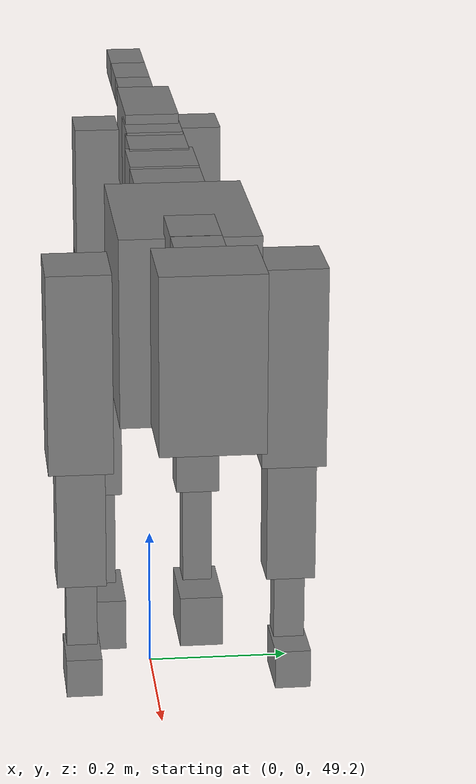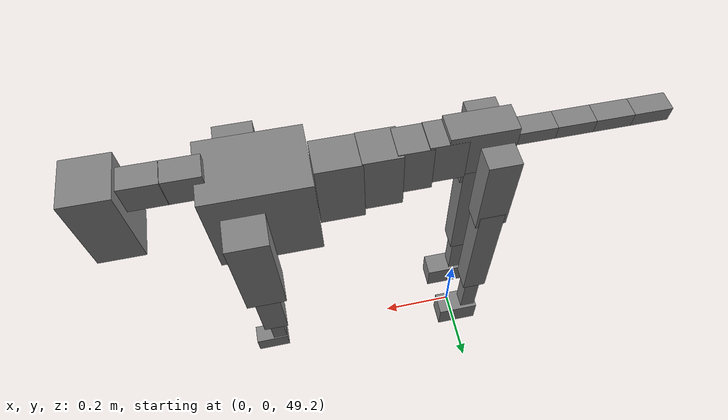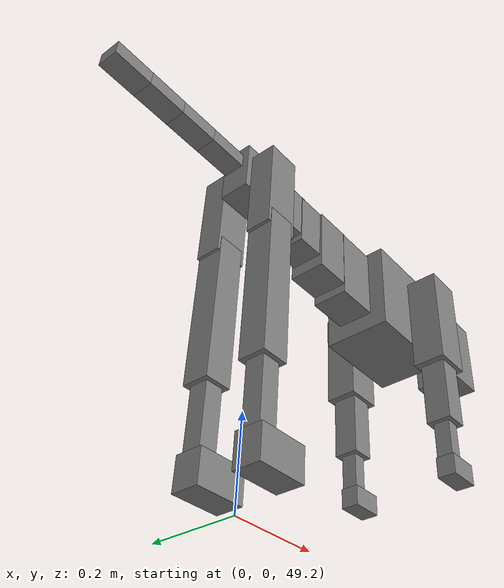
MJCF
<mujoco model="dog">

    <default>
        <joint armature="0.02" stiffness="1" damping="0.2" limited="true"/>
        <geom condim="3" friction="1 0.05 0.05" margin="0.01"/>
        <motor ctrllimited="true" ctrlrange="-1.0 1.0" forcelimited="true" gear="50"/>
    </default>

    <compiler inertiafromgeom="true" angle="radian"/>

    <option timestep="0.016" iterations="50" tolerance="1e-10" solver="Newton" jacobian="dense" cone="pyramidal"/>

    <size nconmax="20000" njmax="60000" nstack="5000000"/>
    <visual>
        <map force="0.1" zfar="30"/>
        <rgba haze="0.15 0.25 0.35 1"/>
        <quality shadowsize="2048"/>
        <global offwidth="800" offheight="800"/>
    </visual>

    <asset>
        <texture type="skybox" builtin="gradient" rgb1="0.3 0.5 0.7" rgb2="0 0 0" width="512" height="512"/>
        <texture name="texplane" type="2d" builtin="checker" rgb1=".2 .3 .4" rgb2=".1 0.15 0.2" width="512" height="512"
                 mark="cross" markrgb=".8 .8 .8"/>
        <texture name="texgeom" type="cube" builtin="flat" mark="cross" width="127" height="1278" rgb1="0.8 0.6 0.4"
                 rgb2="0.8 0.6 0.4" markrgb="1 1 1" random="0.01"/>

        <material name="matplane" reflectance="0.3" texture="texplane" texrepeat="1 1" texuniform="true"/>
        <material name="matgeom" texture="texgeom" texuniform="true" rgba="0.8 0.6 .4 1"/>
    </asset>

    <worldbody>
        <geom name="floor" pos="0 0 0" size="0 0 .25" type="plane" material="matplane" condim="3"/>

        <light directional="false" diffuse=".2 .2 .2" specular="0 0 0" pos="0 0 5" dir="0 0 -1" castshadow="false"/>
        <light mode="targetbodycom" target="torso" directional="false" diffuse=".8 .8 .8" specular="0.3 0.3 0.3"
               pos="0 0 4.0" dir="0 0 -1"/>

        <body name="root" pos="0 0 50">
            <freejoint name="root_1"/>
            <geom type="box" pos="0 0 -0.02" size="0.0774  0.0358  0.063" density="2030"/>

            <body name="spine1" pos="0.054 0 0">
                <joint name="spine1_y" axis="0 1 0" range="0 0.7" limited="true"/>
                <geom type="box" pos="0.02375 0 -0.03" size="0.04375  0.0375  0.05985" density="2030"/>

                <body name="spine2" pos="0.0612 0 0">
                    <joint name="spine2_y" axis="0 1 0" range="-0.15 0.15" limited="true"/>
                    <geom type="box" pos="0.03555  0  -0.04" size="0.04055  0.039  0.06615" density="2030"/>

                    <body name="spine3" pos="0.0730 0 0">
                        <joint name="spine3_y" axis="0 1 0" range="-0.15 0.15" limited="true"/>
                        <geom type="box" pos="0.03555  0  -0.057" size="0.04555  0.0445  0.081" density="2030"/>

                        <body name="spine4" pos="0.0780 0 0">
                            <joint name="spine4_y" axis="0 1 0" range="-0.15 0.15" limited="true"/>
                            <geom type="box" pos="0.05265  0  -0.07" size="0.05265  0.045  0.09135" density="2030"/>

                            <body name="torso" pos="0.1082 0 0">
                                <joint name="torso_y" axis="0 1 0" range="-0.15 0.15" limited="true"/>
                                <geom type="box" pos="0.11925  0  -0.085" size="0.11925  0.085  0.11745"
                                      density="2030"/>

                                <body name="neck1" pos="0.2160  0   0.0180">
                                    <joint name="neck1_y" axis="0 1 0" range="-1.2  -1" limited="true"/>
                                    <geom type="box" pos="0.0423  0  0" size="0.0423  0.03  0.036" density="2325"/>

                                    <body name="neck2" pos="0.0853  0  0">
                                        <joint name="neck2_y" axis="0 1 0" range="0.1  0" limited="true"/>
                                        <geom type="box" pos="0.0423  0  0" size="0.0423  0.03  0.036" density="2325"/>

                                        <body name="head" pos="0.0853  0  0">
                                            <joint name="head_y" axis="0 1 0" range="-0.3  -0.2" limited="true"/>
                                            <geom type="box" pos="0.0531  0  -0.055" size="0.0531  0.06  0.1044"
                                                  density="4030"/>

                                        </body>
                                    </body>
                                </body>

                                <body name="front_shoulder" pos="0.156  0   -0.0480">
                                    <joint name="front_shoulder_y" axis="0 1 0" range="-1 1.5" limited="true"/>
                                    <geom type="box" pos="0 0.13 -0.1001" size="0.0464  0.0397  0.1267" density="1158"/>
                                    <geom type="box" pos="0 -0.13 -0.1001" size="0.0464  0.0397  0.1267"
                                          density="1158"/>

                                    <body name="front_elbow" pos="0  0  -0.2001">
                                        <joint name="front_elbow_y" axis="0 1 0" range="-2 0" limited="true"/>
                                        <geom type="box" pos="0 0.13 -0.0909" size="0.0297  0.0303  0.0909"
                                              density="1081"/>
                                        <geom type="box" pos="0 -0.13 -0.0909" size="0.0297  0.0303  0.0909"
                                              density="1081"/>

                                        <body name="front_wrist" pos="0  0  -0.1817">
                                            <joint name="front_wrist_y" axis="0 1 0" range="-0.2 0" limited="true"/>
                                            <geom type="box" pos="0 0.13 -0.0497" size="0.0172  0.0191  0.0628"
                                                  density="1664"/>
                                            <geom type="box" pos="0 -0.13 -0.0497" size="0.0172  0.0191  0.0628"
                                                  density="1664"/>

                                            <body name="front_finger_end" pos="0  0  -0.0993">
                                                <joint name="front_finger_y" axis="0 1 0" range="-0.4 1"
                                                       limited="true"/>
                                                <geom type="box" pos="0.0221  0.13  -0.0096"
                                                      size="0.0405  0.0221  0.0246" density="1515"/>
                                                <geom type="box" pos="0.0221  -0.13  -0.0096"
                                                      size="0.0405  0.0221  0.0246" density="1515"/>

                                            </body>

                                        </body>
                                    </body>
                                </body>

                            </body>
                        </body>
                    </body>
                </body>
            </body>

            <body name="back_hip" pos="-0.03 0 -0.018">
                <joint name="back_hip_y" axis="0 1 0" range="-1.5 0.3" limited="true"/>
                <geom type="box" pos="0 0.07 -0.0902" size="0.0381  0.0299  0.1130" density="1154"/>
                <geom type="box" pos="0 -0.07 -0.0902" size="0.0381  0.0299  0.1130" density="1154"/>

                <body name="back_knee" pos="0  0  -0.1804">
                    <joint name="back_knee_y" axis="0 1 0" range="0 2.8" limited="true"/>
                    <geom type="box" pos="0 0.07 -0.1616" size="0.0312  0.0307  0.1772" density="1227"/>
                    <geom type="box" pos="0 -0.07 -0.1616" size="0.0312  0.0307  0.1772" density="1227"/>

                    <body name="back_ankle" pos="0  0  -0.3233">
                        <joint name="back_ankle_y" axis="0 1 0" range="-2.2 0" limited="true"/>
                        <geom type="box" pos="0 0.07 -0.0861" size="0.0209  0.0209  0.0974" density="1284"/>
                        <geom type="box" pos="0 -0.07 -0.0861" size="0.0209  0.0209  0.0974" density="1284"/>

                        <body name="back_toe_end" pos="0  0  -0.1723">
                            <joint name="back_toe_y" axis="0 1 0" range="-0.4 1" limited="true"/>
                            <geom type="box" pos="0.0308  0.07  -0.0223" size="0.0565  0.0308  0.0373" density="1515"/>
                            <geom type="box" pos="0.0308  -0.07  -0.0223" size="0.0565  0.0308  0.0373" density="1515"/>

                        </body>
                    </body>
                </body>
            </body>

            <body name="tail1" pos="-0.074 0 -0.006">
                <joint name="tail1_y" axis="0 1 0" range="-0.2 0.2" limited="true"/>
                <geom type="box" pos="-0.0536  0  0" size="0.045  0.025  0.0175" density="1587"/>

                <body name="tail2" pos="-0.09 0 0">
                    <joint name="tail2_y" axis="0 1 0" range="-0.2 0.2" limited="true"/>
                    <geom type="box" pos="-0.0536  0  0" size="0.045  0.025  0.0175" density="1587"/>

                    <body name="tail3" pos="-0.09 0 0">
                        <joint name="tail3_y" axis="0 1 0" range="-0.2 0.2" limited="true"/>
                        <geom type="box" pos="-0.0536  0  0" size="0.045  0.025  0.0175" density="1587"/>

                        <body name="tail4" pos="-0.09 0 0">
                            <joint name="tail4_y" axis="0 1 0" range="-0.2 0.2" limited="true"/>
                            <geom type="box" pos="-0.0536  0  0" size="0.045  0.025  0.0175" density="1587"/>

                        </body>
                    </body>
                </body>
            </body>
        </body>
    </worldbody>

    <actuator>
        <motor joint="spine1_y" forcerange="-150 150     "/>
        <motor joint="spine2_y" forcerange="-150 150     "/>
        <motor joint="spine3_y" forcerange="-150 150     "/>
        <motor joint="spine4_y" forcerange="-150 150     "/>
        <motor joint="torso_y" forcerange="-150 150     "/>
        <motor joint="neck1_y" forcerange="-100 100       "/>
        <motor joint="neck2_y" forcerange="-100 100       "/>
        <motor joint="head_y" forcerange="-150 150       "/>
        <motor joint="front_shoulder_y" forcerange="-197.22 167.37"/>
        <motor joint="front_elbow_y" forcerange="-190.05 130.58"/>
        <motor joint="front_wrist_y" forcerange="-76.34 76.12"/>
        <motor joint="front_finger_y" forcerange="-24.28 53.57"/>
        <motor joint="back_hip_y" forcerange="-207.06 391.07"/>
        <motor joint="back_knee_y" forcerange="-293.32 353.39"/>
        <motor joint="back_angle_y" forcerange="-69.48 165.46"/>
        <motor joint="back_toe_y" forcerange="-46.55 119.96"/>
        <motor joint="tail1_y" forcerange="-50 50     "/>
        <motor joint="tail2_y" forcerange="-50 50     "/>
        <motor joint="tail3_y" forcerange="-50 50     "/>
        <motor joint="tail4_y" forcerange="-50 50     "/>
    </actuator>
</mujoco>
